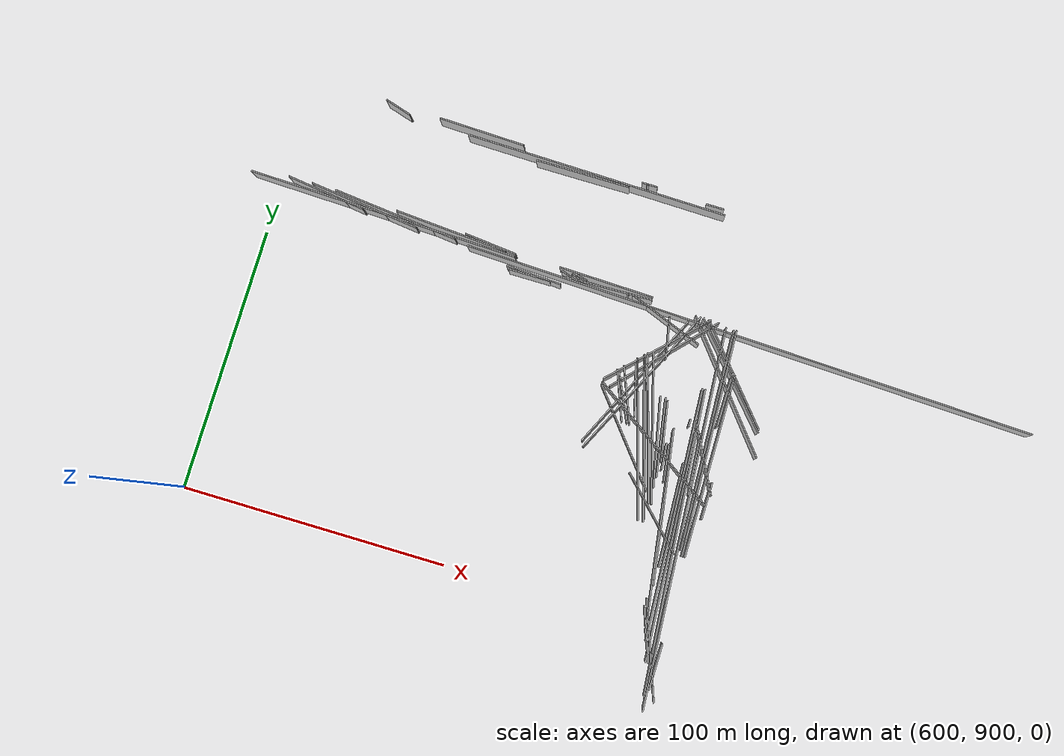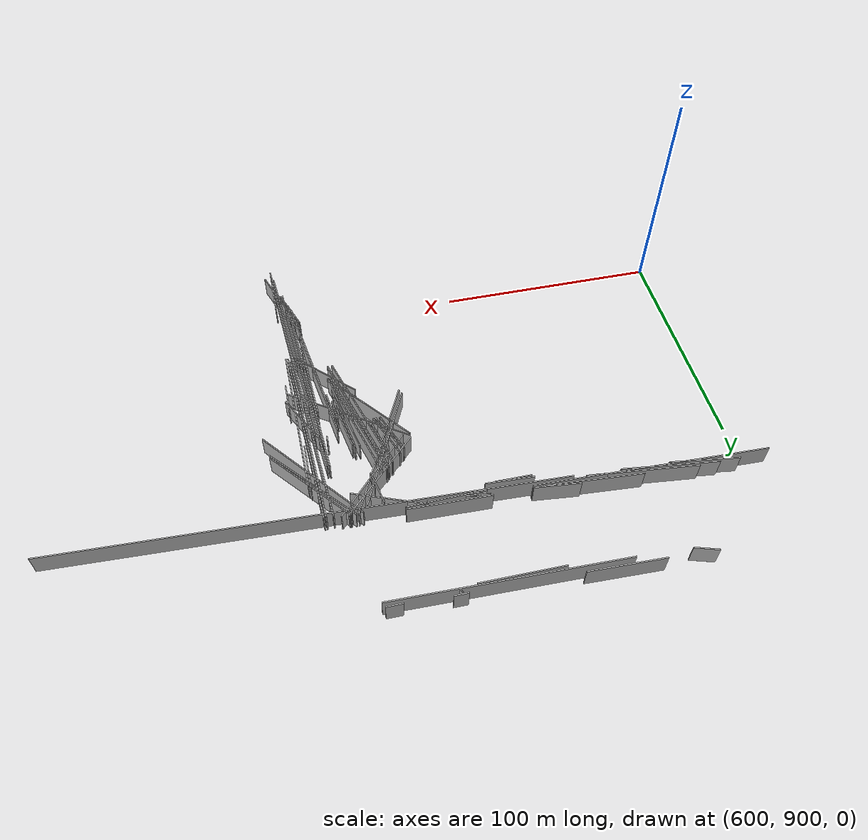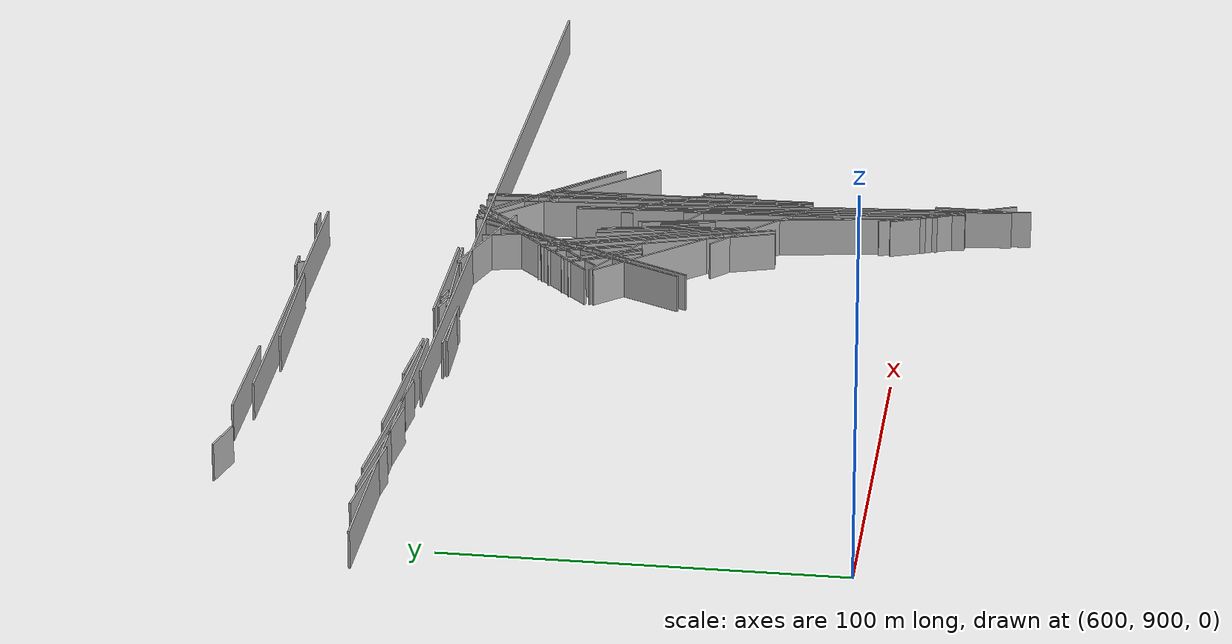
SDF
<sdf version="1.6">
 <model name="Worldsegments">
  <static>1</static>
  <link name="Wall_5">
   <pose>641.5 1017.5 5.0 0 0 -0.029117981</pose>
   <collision name="Wall_5_Collision"><geometry><box><size>103.04368 0.5 10.0</size></box></geometry></collision>
   <visual name="Wall_5_Visual"><geometry><box><size>103.04368 0.5 10.0</size></box></geometry></visual>
  </link>
  <link name="Wall_9">
   <pose>784.0 1011.0 5.0 0 0 -0.036680788</pose>
   <collision name="Wall_9_Collision"><geometry><box><size>218.14674 0.5 10.0</size></box></geometry></collision>
   <visual name="Wall_9_Visual"><geometry><box><size>218.14674 0.5 10.0</size></box></geometry></visual>
  </link>
  <link name="Wall_15">
   <pose>667.5 1057.5 5.0 0 0 -0.03029376</pose>
   <collision name="Wall_15_Collision"><geometry><box><size>33.01515 0.5 10.0</size></box></geometry></collision>
   <visual name="Wall_15_Visual"><geometry><box><size>33.01515 0.5 10.0</size></box></geometry></visual>
  </link>
  <link name="Wall_24">
   <pose>713.0 1054.0 5.0 0 0 -0.019997334</pose>
   <collision name="Wall_24_Collision"><geometry><box><size>100.02 0.5 10.0</size></box></geometry></collision>
   <visual name="Wall_24_Visual"><geometry><box><size>100.02 0.5 10.0</size></box></geometry></visual>
  </link>
  <link name="Wall_56">
   <pose>779.0 932.5 5.0 0 0 -1.4825307</pose>
   <collision name="Wall_56_Collision">
    <geometry><box><size>113.44161 0.5 10.0</size></box></geometry>
   </collision>
   <visual name="Wall_56_Visual"><geometry><box><size>113.44161 0.5 10.0</size></box></geometry></visual>
  </link>
  <link name="Wall_62">
   <pose>708.0 1053.0 5.0 0 0 0.0</pose>
   <collision name="Wall_62_Collision"><geometry><box><size>36.0 0.5 10.0</size></box></geometry></collision>
   <visual name="Wall_62_Visual"><geometry><box><size>36.0 0.5 10.0</size></box></geometry></visual>
  </link>
  <link name="Wall_111">
   <pose>728.0 1016.5 5.0 0 0 -0.027770637</pose>
   <collision name="Wall_111_Collision">
    <geometry><box><size>36.013885 0.5 10.0</size></box></geometry>
   </collision>
   <visual name="Wall_111_Visual"><geometry><box><size>36.013885 0.5 10.0</size></box></geometry></visual>
  </link>
  <link name="Wall_125">
   <pose>780.0 971.5 5.0 0 0 -1.5226408</pose>
   <collision name="Wall_125_Collision">
    <geometry><box><size>83.09633 0.5 10.0</size></box></geometry>
   </collision>
   <visual name="Wall_125_Visual"><geometry><box><size>83.09633 0.5 10.0</size></box></geometry></visual>
  </link>
  <link name="Wall_127">
   <pose>759.5 970.0 5.0 0 0 -1.2998495</pose>
   <collision name="Wall_127_Collision">
    <geometry><box><size>56.044624 0.5 10.0</size></box></geometry>
   </collision>
   <visual name="Wall_127_Visual"><geometry><box><size>56.044624 0.5 10.0</size></box></geometry></visual>
  </link>
  <link name="Wall_136">
   <pose>780.0 942.0 5.0 0 0 -1.5004898</pose>
   <collision name="Wall_136_Collision">
    <geometry><box><size>142.35168 0.5 10.0</size></box></geometry>
   </collision>
   <visual name="Wall_136_Visual"><geometry><box><size>142.35168 0.5 10.0</size></box></geometry></visual>
  </link>
  <link name="Wall_159">
   <pose>771.5 943.5 5.0 0 0 -1.4141945</pose>
   <collision name="Wall_159_Collision">
    <geometry><box><size>57.706154 0.5 10.0</size></box></geometry>
   </collision>
   <visual name="Wall_159_Visual"><geometry><box><size>57.706154 0.5 10.0</size></box></geometry></visual>
  </link>
  <link name="Wall_173">
   <pose>714.0 1015.0 5.0 0 0 -0.32175055</pose>
   <collision name="Wall_173_Collision">
    <geometry><box><size>6.3245554 0.5 10.0</size></box></geometry>
   </collision>
   <visual name="Wall_173_Visual"><geometry><box><size>6.3245554 0.5 10.0</size></box></geometry></visual>
  </link>
  <link name="Wall_176">
   <pose>776.0 942.0 5.0 0 0 -1.507053</pose>
   <collision name="Wall_176_Collision">
    <geometry><box><size>94.19129 0.5 10.0</size></box></geometry>
   </collision>
   <visual name="Wall_176_Visual"><geometry><box><size>94.19129 0.5 10.0</size></box></geometry></visual>
  </link>
  <link name="Wall_202">
   <pose>748.5 984.5 5.0 0 0 1.1300455</pose>
   <collision name="Wall_202_Collision">
    <geometry><box><size>58.60034 0.5 10.0</size></box></geometry>
   </collision>
   <visual name="Wall_202_Visual"><geometry><box><size>58.60034 0.5 10.0</size></box></geometry></visual>
  </link>
  <link name="Wall_218">
   <pose>780.5 964.5 5.0 0 0 -1.091277</pose>
   <collision name="Wall_218_Collision">
    <geometry><box><size>28.178005 0.5 10.0</size></box></geometry>
   </collision>
   <visual name="Wall_218_Visual"><geometry><box><size>28.178005 0.5 10.0</size></box></geometry></visual>
  </link>
  <link name="Wall_220">
   <pose>752.5 1009.5 5.0 0 0 -0.36254424</pose>
   <collision name="Wall_220_Collision">
    <geometry><box><size>31.016125 0.5 10.0</size></box></geometry>
   </collision>
   <visual name="Wall_220_Visual"><geometry><box><size>31.016125 0.5 10.0</size></box></geometry></visual>
  </link>
  <link name="Wall_241">
   <pose>757.5 965.5 5.0 0 0 -1.2902595</pose>
   <collision name="Wall_241_Collision">
    <geometry><box><size>61.400326 0.5 10.0</size></box></geometry>
   </collision>
   <visual name="Wall_241_Visual"><geometry><box><size>61.400326 0.5 10.0</size></box></geometry></visual>
  </link>
  <link name="Wall_250">
   <pose>758.0 969.5 5.0 0 0 -1.2776095</pose>
   <collision name="Wall_250_Collision">
    <geometry><box><size>55.362442 0.5 10.0</size></box></geometry>
   </collision>
   <visual name="Wall_250_Visual"><geometry><box><size>55.362442 0.5 10.0</size></box></geometry></visual>
  </link>
  <link name="Wall_256">
   <pose>778.0 930.5 5.0 0 0 -1.500325</pose>
   <collision name="Wall_256_Collision"><geometry><box><size>85.2115 0.5 10.0</size></box></geometry></collision>
   <visual name="Wall_256_Visual"><geometry><box><size>85.2115 0.5 10.0</size></box></geometry></visual>
  </link>
  <link name="Wall_266">
   <pose>683.0 1018.0 5.0 0 0 -0.09966865</pose>
   <collision name="Wall_266_Collision">
    <geometry><box><size>20.09975 0.5 10.0</size></box></geometry>
   </collision>
   <visual name="Wall_266_Visual"><geometry><box><size>20.09975 0.5 10.0</size></box></geometry></visual>
  </link>
  <link name="Wall_268">
   <pose>772.5 934.5 5.0 0 0 -1.4212366</pose>
   <collision name="Wall_268_Collision">
    <geometry><box><size>73.82411 0.5 10.0</size></box></geometry>
   </collision>
   <visual name="Wall_268_Visual"><geometry><box><size>73.82411 0.5 10.0</size></box></geometry></visual>
  </link>
  <link name="Wall_275">
   <pose>635.0 1057.5 5.0 0 0 -0.2914568</pose>
   <collision name="Wall_275_Collision">
    <geometry><box><size>10.440307 0.5 10.0</size></box></geometry>
   </collision>
   <visual name="Wall_275_Visual"><geometry><box><size>10.440307 0.5 10.0</size></box></geometry></visual>
  </link>
  <link name="Wall_285">
   <pose>646.0 1018.5 5.0 0 0 -0.10379234</pose>
   <collision name="Wall_285_Collision">
    <geometry><box><size>48.259712 0.5 10.0</size></box></geometry>
   </collision>
   <visual name="Wall_285_Visual"><geometry><box><size>48.259712 0.5 10.0</size></box></geometry></visual>
  </link>
  <link name="Wall_288">
   <pose>782.0 987.5 5.0 0 0 -1.5707964</pose>
   <collision name="Wall_288_Collision"><geometry><box><size>21.0 0.5 10.0</size></box></geometry></collision>
   <visual name="Wall_288_Visual"><geometry><box><size>21.0 0.5 10.0</size></box></geometry></visual>
  </link>
  <link name="Wall_294">
   <pose>781.0 970.5 5.0 0 0 -1.5237722</pose>
   <collision name="Wall_294_Collision">
    <geometry><box><size>85.09406 0.5 10.0</size></box></geometry>
   </collision>
   <visual name="Wall_294_Visual"><geometry><box><size>85.09406 0.5 10.0</size></box></geometry></visual>
  </link>
  <link name="Wall_307">
   <pose>634.0 1018.5 5.0 0 0 -0.11848996</pose>
   <collision name="Wall_307_Collision">
    <geometry><box><size>42.296574 0.5 10.0</size></box></geometry>
   </collision>
   <visual name="Wall_307_Visual"><geometry><box><size>42.296574 0.5 10.0</size></box></geometry></visual>
  </link>
  <link name="Wall_333">
   <pose>781.5 892.5 5.0 0 0 -1.2151605</pose>
   <collision name="Wall_333_Collision">
    <geometry><box><size>37.336308 0.5 10.0</size></box></geometry>
   </collision>
   <visual name="Wall_333_Visual"><geometry><box><size>37.336308 0.5 10.0</size></box></geometry></visual>
  </link>
  <link name="Wall_335">
   <pose>737.0 1014.5 5.0 0 0 -1.5707964</pose>
   <collision name="Wall_335_Collision"><geometry><box><size>1.0 0.5 10.0</size></box></geometry></collision>
   <visual name="Wall_335_Visual"><geometry><box><size>1.0 0.5 10.0</size></box></geometry></visual>
  </link>
  <link name="Wall_336">
   <pose>768.0 940.0 5.0 0 0 -0.7853982</pose>
   <collision name="Wall_336_Collision">
    <geometry><box><size>33.941124 0.5 10.0</size></box></geometry>
   </collision>
   <visual name="Wall_336_Visual"><geometry><box><size>33.941124 0.5 10.0</size></box></geometry></visual>
  </link>
  <link name="Wall_355">
   <pose>753.0 998.0 5.0 0 0 0.7853982</pose>
   <collision name="Wall_355_Collision">
    <geometry><box><size>45.254833 0.5 10.0</size></box></geometry>
   </collision>
   <visual name="Wall_355_Visual"><geometry><box><size>45.254833 0.5 10.0</size></box></geometry></visual>
  </link>
  <link name="Wall_373">
   <pose>747.0 979.0 5.0 0 0 -1.19029</pose>
   <collision name="Wall_373_Collision">
    <geometry><box><size>21.540659 0.5 10.0</size></box></geometry>
   </collision>
   <visual name="Wall_373_Visual"><geometry><box><size>21.540659 0.5 10.0</size></box></geometry></visual>
  </link>
  <link name="Wall_382">
   <pose>755.5 964.5 5.0 0 0 -1.2809498</pose>
   <collision name="Wall_382_Collision">
    <geometry><box><size>59.48109 0.5 10.0</size></box></geometry>
   </collision>
   <visual name="Wall_382_Visual"><geometry><box><size>59.48109 0.5 10.0</size></box></geometry></visual>
  </link>
  <link name="Wall_384">
   <pose>717.5 1015.0 5.0 0 0 -0.38050637</pose>
   <collision name="Wall_384_Collision">
    <geometry><box><size>5.3851647 0.5 10.0</size></box></geometry>
   </collision>
   <visual name="Wall_384_Visual"><geometry><box><size>5.3851647 0.5 10.0</size></box></geometry></visual>
  </link>
  <link name="Wall_394">
   <pose>761.5 964.5 5.0 0 0 -0.5926974</pose>
   <collision name="Wall_394_Collision">
    <geometry><box><size>59.07622 0.5 10.0</size></box></geometry>
   </collision>
   <visual name="Wall_394_Visual"><geometry><box><size>59.07622 0.5 10.0</size></box></geometry></visual>
  </link>
  <link name="Wall_402">
   <pose>783.5 962.5 5.0 0 0 -1.5563046</pose>
   <collision name="Wall_402_Collision">
    <geometry><box><size>69.00725 0.5 10.0</size></box></geometry>
   </collision>
   <visual name="Wall_402_Visual"><geometry><box><size>69.00725 0.5 10.0</size></box></geometry></visual>
  </link>
  <link name="Wall_405">
   <pose>729.0 1014.5 5.0 0 0 0.029403288</pose>
   <collision name="Wall_405_Collision"><geometry><box><size>34.0147 0.5 10.0</size></box></geometry></collision>
   <visual name="Wall_405_Visual"><geometry><box><size>34.0147 0.5 10.0</size></box></geometry></visual>
  </link>
  <link name="Wall_408">
   <pose>732.5 1055.0 5.0 0 0 -1.1071488</pose>
   <collision name="Wall_408_Collision">
    <geometry><box><size>2.236068 0.5 10.0</size></box></geometry>
   </collision>
   <visual name="Wall_408_Visual"><geometry><box><size>2.236068 0.5 10.0</size></box></geometry></visual>
  </link>
  <link name="Wall_415">
   <pose>786.0 950.0 5.0 0 0 -1.5707964</pose>
   <collision name="Wall_415_Collision"><geometry><box><size>14.0 0.5 10.0</size></box></geometry></collision>
   <visual name="Wall_415_Visual"><geometry><box><size>14.0 0.5 10.0</size></box></geometry></visual>
  </link>
  <link name="Wall_422">
   <pose>762.5 965.5 5.0 0 0 -1.3617734</pose>
   <collision name="Wall_422_Collision">
    <geometry><box><size>33.734257 0.5 10.0</size></box></geometry>
   </collision>
   <visual name="Wall_422_Visual"><geometry><box><size>33.734257 0.5 10.0</size></box></geometry></visual>
  </link>
  <link name="Wall_436">
   <pose>719.0 1015.5 5.0 0 0 -0.24497867</pose>
   <collision name="Wall_436_Collision">
    <geometry><box><size>4.1231055 0.5 10.0</size></box></geometry>
   </collision>
   <visual name="Wall_436_Visual"><geometry><box><size>4.1231055 0.5 10.0</size></box></geometry></visual>
  </link>
  <link name="Wall_437">
   <pose>758.0 965.5 5.0 0 0 -1.297137</pose>
   <collision name="Wall_437_Collision">
    <geometry><box><size>59.20304 0.5 10.0</size></box></geometry>
   </collision>
   <visual name="Wall_437_Visual"><geometry><box><size>59.20304 0.5 10.0</size></box></geometry></visual>
  </link>
  <link name="Wall_453">
   <pose>778.0 961.5 5.0 0 0 -1.484058</pose>
   <collision name="Wall_453_Collision">
    <geometry><box><size>23.086792 0.5 10.0</size></box></geometry>
   </collision>
   <visual name="Wall_453_Visual"><geometry><box><size>23.086792 0.5 10.0</size></box></geometry></visual>
  </link>
  <link name="Wall_456">
   <pose>700.0 1011.0 5.0 0 0 0.0</pose>
   <collision name="Wall_456_Collision"><geometry><box><size>16.0 0.5 10.0</size></box></geometry></collision>
   <visual name="Wall_456_Visual"><geometry><box><size>16.0 0.5 10.0</size></box></geometry></visual>
  </link>
  <link name="Wall_475">
   <pose>781.5 996.5 5.0 0 0 -0.84593016</pose>
   <collision name="Wall_475_Collision">
    <geometry><box><size>46.75468 0.5 10.0</size></box></geometry>
   </collision>
   <visual name="Wall_475_Visual"><geometry><box><size>46.75468 0.5 10.0</size></box></geometry></visual>
  </link>
  <link name="Wall_479">
   <pose>758.5 1055.0 5.0 0 0 0.0</pose>
   <collision name="Wall_479_Collision"><geometry><box><size>7.0 0.5 10.0</size></box></geometry></collision>
   <visual name="Wall_479_Visual"><geometry><box><size>7.0 0.5 10.0</size></box></geometry></visual>
  </link>
  <link name="Wall_487">
   <pose>750.5 963.5 5.0 0 0 -0.8850668</pose>
   <collision name="Wall_487_Collision">
    <geometry><box><size>42.638012 0.5 10.0</size></box></geometry>
   </collision>
   <visual name="Wall_487_Visual"><geometry><box><size>42.638012 0.5 10.0</size></box></geometry></visual>
  </link>
  <link name="Wall_491">
   <pose>744.5 978.0 5.0 0 0 -1.199905</pose>
   <collision name="Wall_491_Collision">
    <geometry><box><size>19.313208 0.5 10.0</size></box></geometry>
   </collision>
   <visual name="Wall_491_Visual"><geometry><box><size>19.313208 0.5 10.0</size></box></geometry></visual>
  </link>
  <link name="Wall_502">
   <pose>755.5 1003.5 5.0 0 0 -1.3734008</pose>
   <collision name="Wall_502_Collision">
    <geometry><box><size>15.297058 0.5 10.0</size></box></geometry>
   </collision>
   <visual name="Wall_502_Visual"><geometry><box><size>15.297058 0.5 10.0</size></box></geometry></visual>
  </link>
  <link name="Wall_509">
   <pose>766.5 961.0 5.0 0 0 -1.4711276</pose>
   <collision name="Wall_509_Collision">
    <geometry><box><size>10.049875 0.5 10.0</size></box></geometry>
   </collision>
   <visual name="Wall_509_Visual"><geometry><box><size>10.049875 0.5 10.0</size></box></geometry></visual>
  </link>
  <link name="Wall_526">
   <pose>768.0 959.0 5.0 0 0 -1.4288993</pose>
   <collision name="Wall_526_Collision">
    <geometry><box><size>14.142136 0.5 10.0</size></box></geometry>
   </collision>
   <visual name="Wall_526_Visual"><geometry><box><size>14.142136 0.5 10.0</size></box></geometry></visual>
  </link>
  <link name="Wall_529">
   <pose>751.0 985.0 5.0 0 0 1.1210368</pose>
   <collision name="Wall_529_Collision">
    <geometry><box><size>64.40497 0.5 10.0</size></box></geometry>
   </collision>
   <visual name="Wall_529_Visual"><geometry><box><size>64.40497 0.5 10.0</size></box></geometry></visual>
  </link>
  <link name="Wall_535">
   <pose>775.0 941.5 5.0 0 0 -1.5195591</pose>
   <collision name="Wall_535_Collision">
    <geometry><box><size>39.051247 0.5 10.0</size></box></geometry>
   </collision>
   <visual name="Wall_535_Visual"><geometry><box><size>39.051247 0.5 10.0</size></box></geometry></visual>
  </link>
  <link name="Wall_543">
   <pose>667.5 1018.5 5.0 0 0 -0.06965458</pose>
   <collision name="Wall_543_Collision">
    <geometry><box><size>43.104523 0.5 10.0</size></box></geometry>
   </collision>
   <visual name="Wall_543_Visual"><geometry><box><size>43.104523 0.5 10.0</size></box></geometry></visual>
  </link>
  <link name="Wall_545">
   <pose>746.0 977.5 5.0 0 0 -1.1309538</pose>
   <collision name="Wall_545_Collision">
    <geometry><box><size>18.788294 0.5 10.0</size></box></geometry>
   </collision>
   <visual name="Wall_545_Visual"><geometry><box><size>18.788294 0.5 10.0</size></box></geometry></visual>
  </link>
  <link name="Wall_558">
   <pose>749.5 981.5 5.0 0 0 -1.3134726</pose>
   <collision name="Wall_558_Collision">
    <geometry><box><size>19.646883 0.5 10.0</size></box></geometry>
   </collision>
   <visual name="Wall_558_Visual"><geometry><box><size>19.646883 0.5 10.0</size></box></geometry></visual>
  </link>
  <link name="Wall_562">
   <pose>785.0 887.5 5.0 0 0 -1.5707964</pose>
   <collision name="Wall_562_Collision"><geometry><box><size>17.0 0.5 10.0</size></box></geometry></collision>
   <visual name="Wall_562_Visual"><geometry><box><size>17.0 0.5 10.0</size></box></geometry></visual>
  </link>
  <link name="Wall_563">
   <pose>733.0 1056.0 5.0 0 0 0.0</pose>
   <collision name="Wall_563_Collision"><geometry><box><size>6.0 0.5 10.0</size></box></geometry></collision>
   <visual name="Wall_563_Visual"><geometry><box><size>6.0 0.5 10.0</size></box></geometry></visual>
  </link>
  <link name="Wall_573">
   <pose>781.0 992.0 5.0 0 0 -0.8850668</pose>
   <collision name="Wall_573_Collision">
    <geometry><box><size>56.85068 0.5 10.0</size></box></geometry>
   </collision>
   <visual name="Wall_573_Visual"><geometry><box><size>56.85068 0.5 10.0</size></box></geometry></visual>
  </link>
  <link name="Wall_585">
   <pose>782.5 997.0 5.0 0 0 -0.86459726</pose>
   <collision name="Wall_585_Collision">
    <geometry><box><size>44.687805 0.5 10.0</size></box></geometry>
   </collision>
   <visual name="Wall_585_Visual"><geometry><box><size>44.687805 0.5 10.0</size></box></geometry></visual>
  </link>
  <link name="Wall_591">
   <pose>701.5 1011.5 5.0 0 0 -0.047583103</pose>
   <collision name="Wall_591_Collision">
    <geometry><box><size>21.023796 0.5 10.0</size></box></geometry>
   </collision>
   <visual name="Wall_591_Visual"><geometry><box><size>21.023796 0.5 10.0</size></box></geometry></visual>
  </link>
  <link name="Wall_597">
   <pose>763.5 967.5 5.0 0 0 -1.4000611</pose>
   <collision name="Wall_597_Collision">
    <geometry><box><size>29.427877 0.5 10.0</size></box></geometry>
   </collision>
   <visual name="Wall_597_Visual"><geometry><box><size>29.427877 0.5 10.0</size></box></geometry></visual>
  </link>
  <link name="Wall_612">
   <pose>619.0 1019.0 5.0 0 0 -0.13255154</pose>
   <collision name="Wall_612_Collision">
    <geometry><box><size>30.265491 0.5 10.0</size></box></geometry>
   </collision>
   <visual name="Wall_612_Visual"><geometry><box><size>30.265491 0.5 10.0</size></box></geometry></visual>
  </link>
  <link name="Wall_615">
   <pose>756.0 997.0 5.0 0 0 0.81569195</pose>
   <collision name="Wall_615_Collision">
    <geometry><box><size>46.69047 0.5 10.0</size></box></geometry>
   </collision>
   <visual name="Wall_615_Visual"><geometry><box><size>46.69047 0.5 10.0</size></box></geometry></visual>
  </link>
  <link name="Wall_621">
   <pose>772.0 975.5 5.0 0 0 -1.5707964</pose>
   <collision name="Wall_621_Collision"><geometry><box><size>3.0 0.5 10.0</size></box></geometry></collision>
   <visual name="Wall_621_Visual"><geometry><box><size>3.0 0.5 10.0</size></box></geometry></visual>
  </link>
  <link name="Wall_624">
   <pose>764.0 970.0 5.0 0 0 -1.3909428</pose>
   <collision name="Wall_624_Collision">
    <geometry><box><size>22.36068 0.5 10.0</size></box></geometry>
   </collision>
   <visual name="Wall_624_Visual"><geometry><box><size>22.36068 0.5 10.0</size></box></geometry></visual>
  </link>
  <link name="Wall_636">
   <pose>778.5 897.5 5.0 0 0 -1.217806</pose>
   <collision name="Wall_636_Collision">
    <geometry><box><size>20.248457 0.5 10.0</size></box></geometry>
   </collision>
   <visual name="Wall_636_Visual"><geometry><box><size>20.248457 0.5 10.0</size></box></geometry></visual>
  </link>
 </model>
</sdf>
